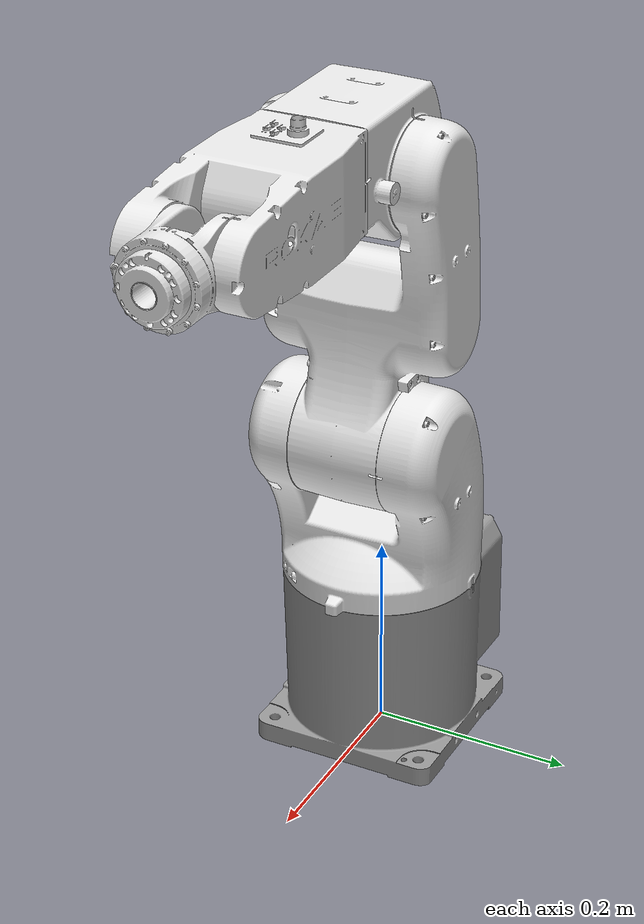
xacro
<?xml version="1.0"?>
<!-- xMateXB4h industrial standard 6-axis manipulator (4 kg payload, extended wrist) -->
<!-- Kinematics from 仓二 XB4h-R596-04 *_mech.cfg + isg/XB4h-R596/param.json -->
<!-- Attention: simplified link inertias for visualization / MoveIt -->

<robot name="xMateXB4h" xmlns:xacro="http://www.ros.org/wiki/xacro">

  <xacro:arg name="robot_ip" default="192.168.21.10"/>
  <xacro:arg name="local_ip" default="192.168.21.131"/>

  <xacro:include filename="$(find rokae_description)/urdf/materials.xacro"/>
  <xacro:property name="nameofManipulator" value="xMateXB4h"/>

  <!-- Joint limits: JOINT_RANGE_*_CUSTOMIZE from XB4h-R596-04_mech.cfg (deg -> rad) -->
  <xacro:property name="j1_lo" value="-2.9670597283903604"/>
  <xacro:property name="j1_hi" value="2.9670597283903604"/>
  <xacro:property name="j2_lo" value="-1.3962634015954636"/>
  <xacro:property name="j2_hi" value="2.5132741228718345"/>
  <xacro:property name="j3_lo" value="-3.3859385131987587"/>
  <xacro:property name="j3_hi" value="0.9424777960769377"/>
  <xacro:property name="j4_lo" value="-2.9670597283903604"/>
  <xacro:property name="j4_hi" value="2.9670597283903604"/>
  <xacro:property name="j5_lo" value="-2.076941553646873"/>
  <xacro:property name="j5_hi" value="2.076941553646873"/>
  <xacro:property name="j6_lo" value="-6.283185307179586"/>
  <xacro:property name="j6_hi" value="6.283185307179586"/>

  <!-- JOINT_MAX_SPEED from XB4h-R596-04_mech.cfg MOTION (deg/s -> rad/s) -->
  <xacro:property name="j1_vel" value="7.67944870877505"/>
  <xacro:property name="j2_vel" value="6.19591884457986"/>
  <xacro:property name="j3_vel" value="7.67944870877505"/>
  <xacro:property name="j4_vel" value="8.552113334772214"/>
  <xacro:property name="j5_vel" value="7.853981633974483"/>
  <xacro:property name="j6_vel" value="12.566370614359172"/>

  <link name="world"/>
  <joint name="fixed" type="fixed">
    <parent link="world"/>
    <child link="${nameofManipulator}_base"/>
  </joint>

  <link name="${nameofManipulator}_base">
    <visual>
      <geometry>
        <mesh filename="package://rokae_description/meshes/${nameofManipulator}/visual/${nameofManipulator}_base.stl" scale="0.001 0.001 0.001"/>
      </geometry>
      <origin rpy="0 0 0" xyz="0 0 0"/>
      <material name="grey"/>
    </visual>
    <inertial>
      <mass value="6.607"/>
      <inertia ixx="0.05" ixy="0" ixz="0" iyy="0.05" iyz="0" izz="0.05"/>
      <origin rpy="0 0 0" xyz="0 0 0.17"/>
    </inertial>
    <collision>
      <geometry>
        <mesh filename="package://rokae_description/meshes/${nameofManipulator}/collision/${nameofManipulator}_base.stl" scale="0.001 0.001 0.001"/>
      </geometry>
      <origin rpy="0 0 0" xyz="0 0 0"/>
    </collision>
  </link>

  <!-- param.json: joint1 at base origin, axis Z -->
  <joint name="joint1" type="revolute">
    <parent link="${nameofManipulator}_base"/>
    <child link="${nameofManipulator}_link1"/>
    <limit effort="4.46" lower="${j1_lo}" upper="${j1_hi}" velocity="${j1_vel}"/>
    <axis xyz="0 0 1"/>
    <origin rpy="0 0 0" xyz="0 0 0"/>
  </joint>

  <link name="${nameofManipulator}_link1">
    <visual>
      <geometry>
        <mesh filename="package://rokae_description/meshes/${nameofManipulator}/visual/${nameofManipulator}_link1.stl" scale="0.001 0.001 0.001"/>
      </geometry>
      <origin rpy="0 0 0" xyz="0 0 0"/>
      <material name="white"/>
    </visual>
    <inertial>
      <mass value="6.386"/>
      <inertia ixx="0.05" ixy="0" ixz="0" iyy="0.05" iyz="0" izz="0.05"/>
      <origin rpy="0 0 0" xyz="0.013 0.019 0.263"/>
    </inertial>
    <collision>
      <geometry>
        <mesh filename="package://rokae_description/meshes/${nameofManipulator}/collision/${nameofManipulator}_link1.stl" scale="0.001 0.001 0.001"/>
      </geometry>
      <origin rpy="0 0 0" xyz="0 0 0"/>
    </collision>
  </link>

  <!-- param.json: joint2 [40, 0, 342] mm, axis Y -->
  <joint name="joint2" type="revolute">
    <parent link="${nameofManipulator}_link1"/>
    <child link="${nameofManipulator}_link2"/>
    <limit effort="4.46" lower="${j2_lo}" upper="${j2_hi}" velocity="${j2_vel}"/>
    <axis xyz="0 1 0"/>
    <origin rpy="0 0 0" xyz="0.04 0 0.342"/>
  </joint>

  <link name="${nameofManipulator}_link2">
    <visual>
      <geometry>
        <mesh filename="package://rokae_description/meshes/${nameofManipulator}/visual/${nameofManipulator}_link2.stl" scale="0.001 0.001 0.001"/>
      </geometry>
      <origin rpy="0 0 0" xyz="0 0 0"/>
      <material name="white"/>
    </visual>
    <inertial>
      <mass value="3.805"/>
      <inertia ixx="0.05" ixy="0" ixz="0" iyy="0.05" iyz="0" izz="0.05"/>
      <origin rpy="0 0 0" xyz="-0.008 0.019 0.123"/>
    </inertial>
    <collision>
      <geometry>
        <mesh filename="package://rokae_description/meshes/${nameofManipulator}/collision/${nameofManipulator}_link2.stl" scale="0.001 0.001 0.001"/>
      </geometry>
      <origin rpy="0 0 0" xyz="0 0 0"/>
    </collision>
  </link>

  <!-- param.json: joint3 [0, 0, 275] mm, axis Y -->
  <joint name="joint3" type="revolute">
    <parent link="${nameofManipulator}_link2"/>
    <child link="${nameofManipulator}_link3"/>
    <limit effort="2.24" lower="${j3_lo}" upper="${j3_hi}" velocity="${j3_vel}"/>
    <axis xyz="0 1 0"/>
    <origin rpy="0 0 0" xyz="0 0 0.275"/>
  </joint>

  <link name="${nameofManipulator}_link3">
    <visual>
      <geometry>
        <mesh filename="package://rokae_description/meshes/${nameofManipulator}/visual/${nameofManipulator}_link3.stl" scale="0.001 0.001 0.001"/>
      </geometry>
      <origin rpy="0 0 0" xyz="0 0 0"/>
      <material name="white"/>
    </visual>
    <inertial>
      <mass value="3.805"/>
      <inertia ixx="0.03" ixy="0" ixz="0" iyy="0.03" iyz="0" izz="0.03"/>
      <origin rpy="0 0 0" xyz="0.022 -0.001 0.009"/>
    </inertial>
    <collision>
      <geometry>
        <mesh filename="package://rokae_description/meshes/${nameofManipulator}/collision/${nameofManipulator}_link3.stl" scale="0.001 0.001 0.001"/>
      </geometry>
      <origin rpy="0 0 0" xyz="0 0 0"/>
    </collision>
  </link>

  <!-- param.json: joint4 [280, 0, 25] mm, axis X -->
  <joint name="joint4" type="revolute">
    <parent link="${nameofManipulator}_link3"/>
    <child link="${nameofManipulator}_link4"/>
    <limit effort="1.11" lower="${j4_lo}" upper="${j4_hi}" velocity="${j4_vel}"/>
    <axis xyz="1 0 0"/>
    <origin rpy="0 0 0" xyz="0.28 0 0.025"/>
  </joint>

  <link name="${nameofManipulator}_link4">
    <visual>
      <geometry>
        <mesh filename="package://rokae_description/meshes/${nameofManipulator}/visual/${nameofManipulator}_link4.stl" scale="0.001 0.001 0.001"/>
      </geometry>
      <origin rpy="0 0 0" xyz="0 0 0"/>
      <material name="white"/>
    </visual>
    <inertial>
      <mass value="3.402"/>
      <inertia ixx="0.02" ixy="0" ixz="0" iyy="0.02" iyz="0" izz="0.02"/>
      <origin rpy="0 0 0" xyz="-0.113 0.003 0"/>
    </inertial>
    <collision>
      <geometry>
        <mesh filename="package://rokae_description/meshes/${nameofManipulator}/collision/${nameofManipulator}_link4.stl" scale="0.001 0.001 0.001"/>
      </geometry>
      <origin rpy="0 0 0" xyz="0 0 0"/>
    </collision>
  </link>

  <!-- param.json: joint5 at origin, axis Y -->
  <joint name="joint5" type="revolute">
    <parent link="${nameofManipulator}_link4"/>
    <child link="${nameofManipulator}_link5"/>
    <limit effort="0.56" lower="${j5_lo}" upper="${j5_hi}" velocity="${j5_vel}"/>
    <axis xyz="0 1 0"/>
    <origin rpy="0 0 0" xyz="0 0 0"/>
  </joint>

  <link name="${nameofManipulator}_link5">
    <visual>
      <geometry>
        <mesh filename="package://rokae_description/meshes/${nameofManipulator}/visual/${nameofManipulator}_link5.stl" scale="0.001 0.001 0.001"/>
      </geometry>
      <origin rpy="0 0 0" xyz="0 0 0"/>
      <material name="white"/>
    </visual>
    <inertial>
      <mass value="1.438"/>
      <inertia ixx="0.01" ixy="0" ixz="0" iyy="0.01" iyz="0" izz="0.01"/>
      <origin rpy="0 0 0" xyz="0.023 -0.002 0"/>
    </inertial>
    <collision>
      <geometry>
        <mesh filename="package://rokae_description/meshes/${nameofManipulator}/collision/${nameofManipulator}_link5.stl" scale="0.001 0.001 0.001"/>
      </geometry>
      <origin rpy="0 0 0" xyz="0 0 0"/>
    </collision>
  </link>

  <!-- param.json: joint6 [75, 0, 0] mm, axis X (extended wrist vs XB4s 73 mm) -->
  <joint name="joint6" type="revolute">
    <parent link="${nameofManipulator}_link5"/>
    <child link="${nameofManipulator}_link6"/>
    <limit effort="1.11" lower="${j6_lo}" upper="${j6_hi}" velocity="${j6_vel}"/>
    <axis xyz="1 0 0"/>
    <origin rpy="0 0 0" xyz="0.075 0 0"/>
  </joint>

  <link name="${nameofManipulator}_link6">
    <visual>
      <geometry>
        <mesh filename="package://rokae_description/meshes/${nameofManipulator}/visual/${nameofManipulator}_link6.stl" scale="0.001 0.001 0.001"/>
      </geometry>
      <origin rpy="0 0 0" xyz="0 0 0"/>
      <material name="white"/>
    </visual>
    <inertial>
      <mass value="0.305"/>
      <inertia ixx="0.002" ixy="0" ixz="0" iyy="0.002" iyz="0" izz="0.002"/>
      <origin rpy="0 0 0" xyz="-0.010 0 0"/>
    </inertial>
    <collision>
      <geometry>
        <mesh filename="package://rokae_description/meshes/${nameofManipulator}/collision/${nameofManipulator}_link6.stl" scale="0.001 0.001 0.001"/>
      </geometry>
      <origin rpy="0 0 0" xyz="0 0 0"/>
    </collision>
  </link>

</robot>
